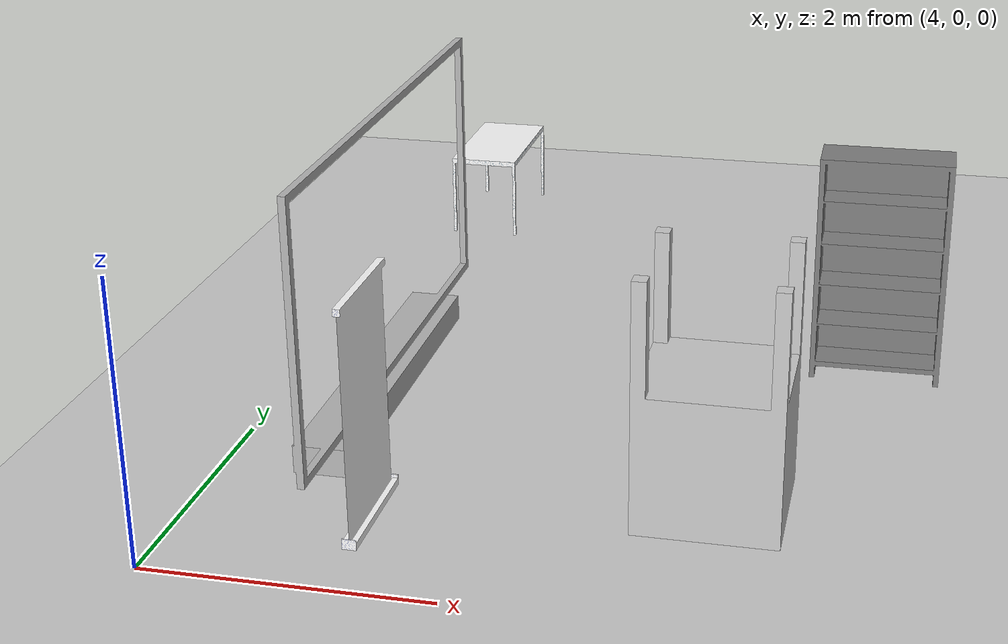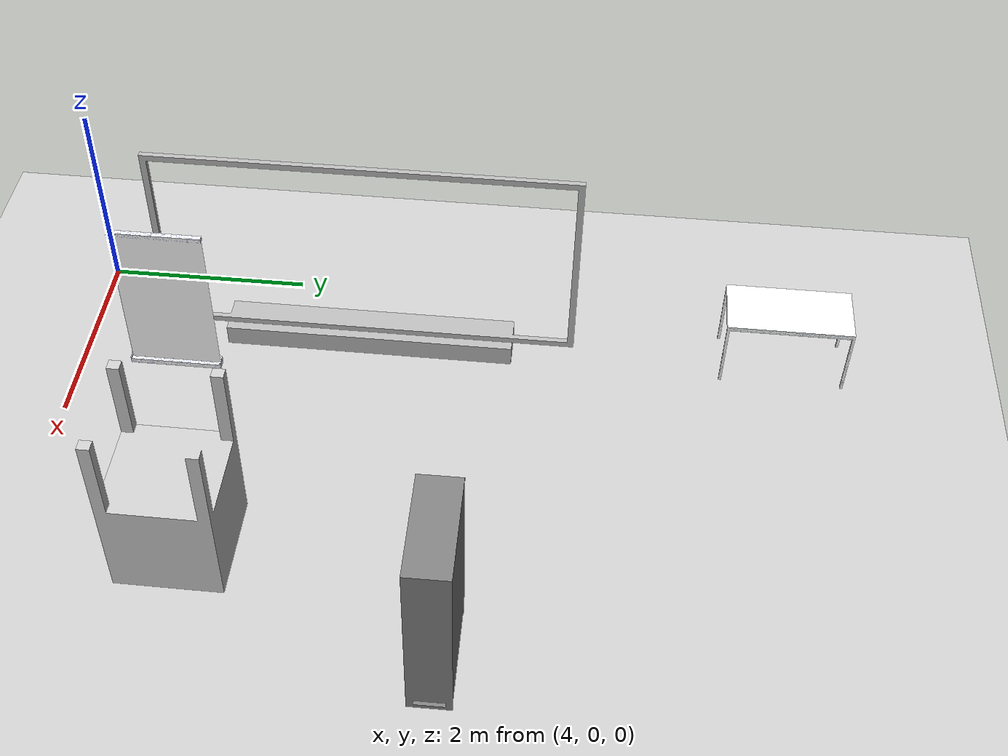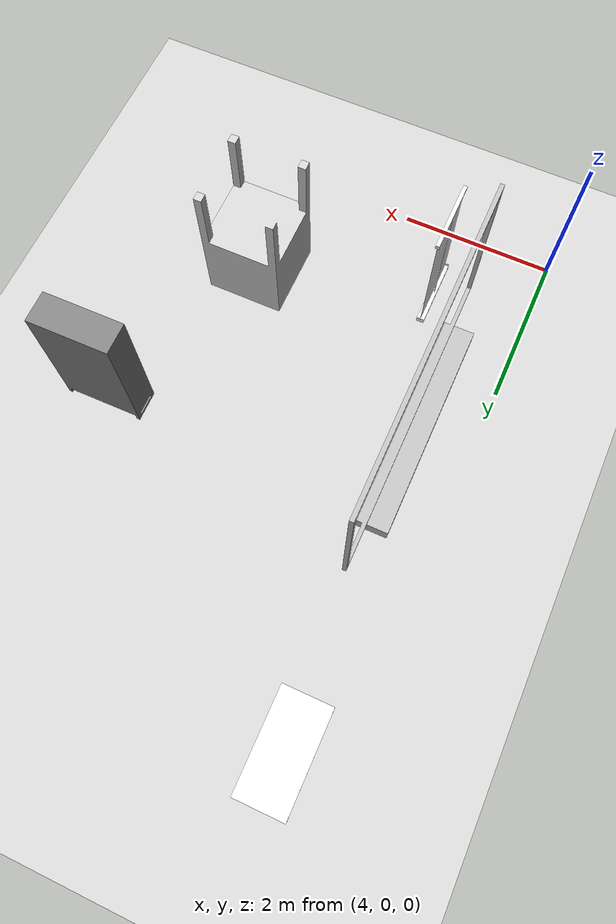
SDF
<sdf version="1.7">
 <world name="default">
  <model name="ground_plane">
   <static>1</static>
   <link name="link">
    <collision name="collision">
     <geometry><plane><normal>0 0 1</normal><size>100 100</size></plane></geometry>
     <surface>
      <contact><collide_bitmask>65535</collide_bitmask></contact>
      <friction><ode><mu>100</mu><mu2>50</mu2></ode></friction>
     </surface>
    </collision>
    <visual name="visual">
     <cast_shadows>0</cast_shadows>
     <geometry><plane><normal>0 0 1</normal><size>100 100</size></plane></geometry>
     <material>
      <script><uri>file://media/materials/scripts/gazebo.material</uri><name>Gazebo/Grey</name></script>
     </material>
    </visual>
   </link>
  </model>
  <model name="whitetablesmall_1_clone_2">
   <static>1</static>
   <link name="link">
    <collision name="collision">
     <geometry>
      <mesh><scale>0.5 0.5 0.9</scale><uri>model://whitetablesmall/meshes/whitetable.dae</uri></mesh>
     </geometry>
    </collision>
    <visual name="visual">
     <geometry>
      <mesh><scale>0.5 0.5 0.9</scale><uri>model://whitetablesmall/meshes/whitetable.dae</uri></mesh>
     </geometry>
     <material>
      <script>
       <uri>model://flipchart/materials/scripts</uri>
       <uri>model://flipchart/materials/textures</uri>
       <name>FlipChart/Diffuse</name>
      </script>
     </material>
    </visual>
   </link>
   <pose>4.60915 7.02167 0 0 -0 0</pose>
  </model>
  <model name="shelf_clone">
   <static>1</static>
   <link name="link">
    <collision name="collision">
     <geometry><mesh><scale>1 1.5 1</scale><uri>model://Shelf/meshes/shelf.dae</uri></mesh></geometry>
    </collision>
    <visual name="visual">
     <geometry><mesh><scale>1 1.5 1</scale><uri>model://Shelf/meshes/shelf.dae</uri></mesh></geometry>
    </visual>
   </link>
   <pose>8.45748 4.14876 0 0 0 -3.1314</pose>
  </model>
  <model name="banner_0_clone_clone_0_clone_0_clone">
   <static>1</static>
   <link name="link">
    <collision name="collision">
     <geometry><mesh><scale>1 1.5 1</scale><uri>model://banner/meshes/banner.dae</uri></mesh></geometry>
    </collision>
    <visual name="visual">
     <geometry><mesh><scale>1 1.5 1</scale><uri>model://banner/meshes/banner.dae</uri></mesh></geometry>
     <material>
      <script>
       <uri>model://banner/materials/scripts</uri>
       <uri>model://banner/materials/textures</uri>
       <name>FlipChart/Diffuse</name>
      </script>
     </material>
    </visual>
   </link>
   <pose>4.72894 -0.030478 0 0 -0 0.001032</pose>
  </model>
  <model name="canvas">
   <static>1</static>
   <link name="link">
    <collision name="collision">
     <geometry><mesh><scale>0.2 0.2 0.2</scale><uri>model://canvas/meshes/canvas.dae</uri></mesh></geometry>
    </collision>
    <visual name="visual">
     <geometry><mesh><scale>0.2 0.2 0.2</scale><uri>model://canvas/meshes/canvas.dae</uri></mesh></geometry>
     <material>
      <script>
       <uri>model://stand/materials/scripts</uri>
       <uri>model://stand/materials/textures</uri>
       <name>black/Diffuse</name>
      </script>
     </material>
    </visual>
   </link>
   <pose>4.74018 2.85499 0.110727 0 0 -3.14133</pose>
  </model>
  <model name="schaukasten">
   <static>1</static>
   <link name="link">
    <collision name="collision">
     <geometry>
      <mesh><scale>0.5 0.5 0.5</scale><uri>model://schaukasten/meshes/schaukasten.dae</uri></mesh>
     </geometry>
    </collision>
    <visual name="visual">
     <geometry>
      <mesh><scale>0.5 0.5 0.5</scale><uri>model://schaukasten/meshes/schaukasten.dae</uri></mesh>
     </geometry>
    </visual>
   </link>
   <pose>7.50507 1.53146 0 0 -0 0</pose>
  </model>
 </world>
</sdf>
